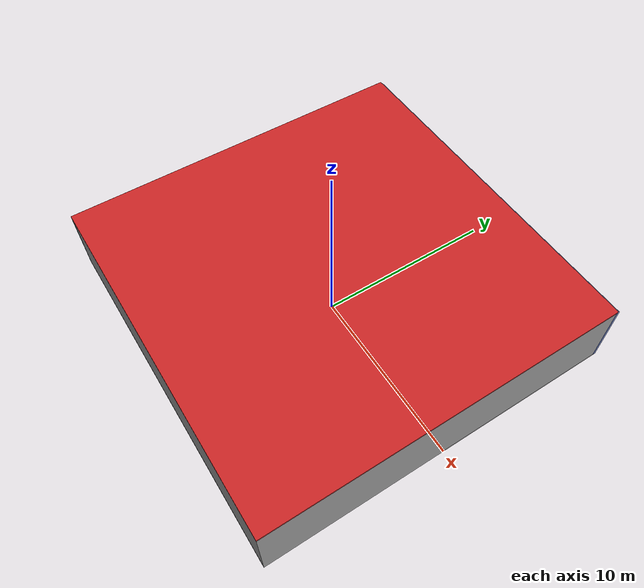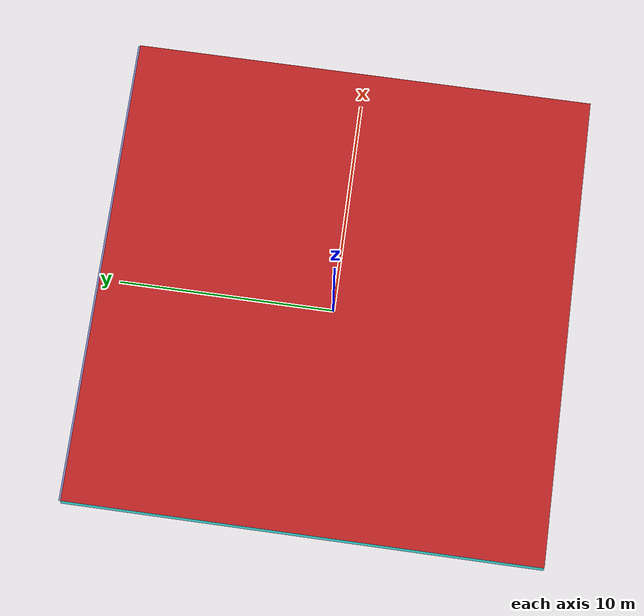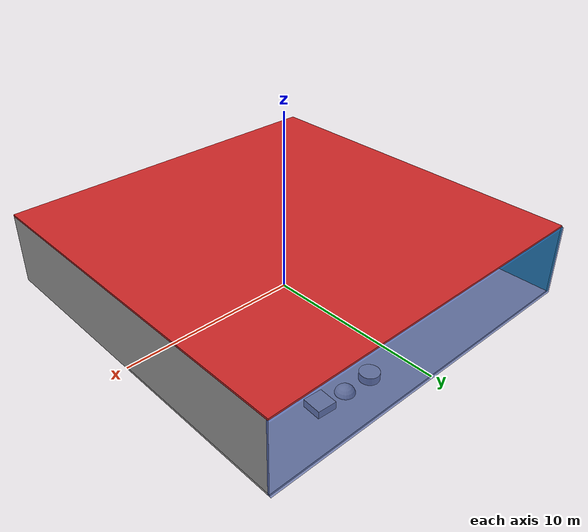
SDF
<sdf version="1.4">
 <world name="default">
  <physics type="ode">
   <max_step_size>0.001</max_step_size>
   <real_time_factor>1</real_time_factor>
   <real_time_update_rate>1000</real_time_update_rate>
   <gravity>0 0 -9.8</gravity>
  </physics>
  <scene><ambient>0.4 0.4 0.4 1</ambient><background>0.7 0.7 0.7 1</background><shadows>1</shadows></scene>
  <model name="Surrounding">
   <static>1</static>
   <link name="Ceiling">
    <collision name="Ceiling_Collision"><geometry><box><size>20 20 0.1</size></box></geometry></collision>
    <visual name="Ceiling_Visual">
     <geometry><box><size>20 20 0.1</size></box></geometry>
     <material>
      <script><uri>file://media/materials/scripts/gazebo.material</uri><name>Gazebo/RedBright</name></script>
     </material>
    </visual>
    <pose>0 0 4.05 0 0 0</pose>
   </link>
   <link name="Wall_South">
    <collision name="Wall_South_Collision">
     <geometry><box><size>20 0 4</size></box></geometry>
     <pose>0 0 2 0 -0 0</pose>
    </collision>
    <visual name="Wall_South_Visual">
     <pose>0 0 2 0 -0 0</pose>
     <geometry><box><size>20 0 4</size></box></geometry>
     <material>
      <script><uri>file://media/materials/scripts/gazebo.material</uri><name>Gazebo/Grey</name></script>
     </material>
    </visual>
    <velocity_decay><linear>0</linear><angular>0</angular></velocity_decay>
    <pose>0 -10 0 0 -0 0</pose>
   </link>
   <link name="Wall_East">
    <collision name="Wall_21_Collision">
     <geometry><box><size>20 0 4</size></box></geometry>
     <pose>0 0 2 0 -0 0</pose>
    </collision>
    <visual name="Wall_21_Visual">
     <pose>0 0 2 0 -0 0</pose>
     <geometry><box><size>20 0 4</size></box></geometry>
     <material>
      <script><uri>file://media/materials/scripts/gazebo.material</uri><name>Gazebo/GreyGradientSky</name></script>
     </material>
    </visual>
    <velocity_decay><linear>0</linear><angular>0</angular></velocity_decay>
    <pose>10 0 0 0 -0 1.5708</pose>
   </link>
   <link name="Wall_North">
    <collision name="Wall_22_Collision">
     <geometry><box><size>20 0.2 4</size></box></geometry>
     <pose>0 0 2 0 -0 0</pose>
    </collision>
    <visual name="Wall_22_Visual">
     <pose>0 0 2 0 -0 0</pose>
     <geometry><box><size>20 0.2 4</size></box></geometry>
     <material>
      <script><uri>file://media/materials/scripts/gazebo.material</uri><name>Gazebo/BlueTransparent</name></script>
     </material>
    </visual>
    <velocity_decay><linear>0</linear><angular>0</angular></velocity_decay>
    <pose>0 10 0 0 -0 0</pose>
   </link>
   <link name="Wall_West">
    <collision name="Wall_23_Collision">
     <geometry><box><size>20 0.2 4</size></box></geometry>
     <pose>0 0 2 0 -0 0</pose>
    </collision>
    <visual name="Wall_23_Visual">
     <pose>0 0 2 0 -0 0</pose>
     <geometry><box><size>20 0.2 4</size></box></geometry>
     <material>
      <script><uri>file://media/materials/scripts/gazebo.material</uri><name>Gazebo/TurquoiseGlow</name></script>
     </material>
    </visual>
    <velocity_decay><linear>0</linear><angular>0</angular></velocity_decay>
    <pose>-10 0 0 0 0 -1.5708</pose>
   </link>
   <link name="Ground_link">
    <collision name="collision">
     <pose>0 0 .05 0 -0 0</pose>
     <geometry><box><size>20 20 0.1</size></box></geometry>
    </collision>
    <visual name="visual">
     <pose>0 0 .05 0 -0 0</pose>
     <geometry><box><size>20 20 0.1</size></box></geometry>
     <material>
      <script><uri>file://media/materials/scripts/gazebo.material</uri><name>Gazebo/LightOff</name></script>
     </material>
    </visual>
   </link>
   <static>1</static>
  </model>
  <spherical_coordinates>
   <surface_model>EARTH_WGS84</surface_model>
   <latitude_deg>0</latitude_deg>
   <longitude_deg>0</longitude_deg>
   <elevation>0</elevation>
   <heading_deg>0</heading_deg>
  </spherical_coordinates>
  <light name="lightball_0" type="diffuse">
   <diffuse>0.8 0.8 0.8 1</diffuse>
   <specular>0.2 0.2 0.2 1</specular>
   <attenuation>
    <range>100</range>
    <constant>0.7</constant>
    <linear>0.01</linear>
    <quadratic>0.001</quadratic>
   </attenuation>
   <direction>-0.5 0.1 -0.9</direction>
   <pose>4.03635587836 -0.208824778153 1.24363793872 0 0 0</pose>
  </light>
  <light name="lightball_1" type="diffuse">
   <diffuse>0.8 0.8 0.8 1</diffuse>
   <specular>0.2 0.2 0.2 1</specular>
   <attenuation>
    <range>100</range>
    <constant>0.7</constant>
    <linear>0.01</linear>
    <quadratic>0.001</quadratic>
   </attenuation>
   <direction>-0.5 0.1 -0.9</direction>
   <pose>8.07053048186 -3.02864577928 1.49485561145 0 0 0</pose>
  </light>
  <light name="lightball_2" type="diffuse">
   <diffuse>0.8 0.8 0.8 1</diffuse>
   <specular>0.2 0.2 0.2 1</specular>
   <attenuation>
    <range>100</range>
    <constant>0.7</constant>
    <linear>0.01</linear>
    <quadratic>0.001</quadratic>
   </attenuation>
   <direction>-0.5 0.1 -0.9</direction>
   <pose>-9.42330016286 -0.913382245491 2.30291944107 0 0 0</pose>
  </light>
  <light name="lightball_3" type="diffuse">
   <diffuse>0.8 0.8 0.8 1</diffuse>
   <specular>0.2 0.2 0.2 1</specular>
   <attenuation>
    <range>100</range>
    <constant>0.7</constant>
    <linear>0.01</linear>
    <quadratic>0.001</quadratic>
   </attenuation>
   <direction>-0.5 0.1 -0.9</direction>
   <pose>-0.122495687945 5.36664609127 3.26111433322 0 0 0</pose>
  </light>
  <light name="lightball_4" type="diffuse">
   <diffuse>0.8 0.8 0.8 1</diffuse>
   <specular>0.2 0.2 0.2 1</specular>
   <attenuation>
    <range>100</range>
    <constant>0.7</constant>
    <linear>0.01</linear>
    <quadratic>0.001</quadratic>
   </attenuation>
   <direction>-0.5 0.1 -0.9</direction>
   <pose>8.0469557924 -0.526966374076 2.96815820758 0 0 0</pose>
  </light>
  <light name="lightball_5" type="diffuse">
   <diffuse>0.8 0.8 0.8 1</diffuse>
   <specular>0.2 0.2 0.2 1</specular>
   <attenuation>
    <range>100</range>
    <constant>0.7</constant>
    <linear>0.01</linear>
    <quadratic>0.001</quadratic>
   </attenuation>
   <direction>-0.5 0.1 -0.9</direction>
   <pose>-4.6645124553 -6.21203385563 1.96804223414 0 0 0</pose>
  </light>
  <light name="lightball_6" type="diffuse">
   <diffuse>0.8 0.8 0.8 1</diffuse>
   <specular>0.2 0.2 0.2 1</specular>
   <attenuation>
    <range>100</range>
    <constant>0.7</constant>
    <linear>0.01</linear>
    <quadratic>0.001</quadratic>
   </attenuation>
   <direction>-0.5 0.1 -0.9</direction>
   <pose>-8.06414839121 -8.81756870172 2.48289744203 0 0 0</pose>
  </light>
  <light name="lightball_7" type="diffuse">
   <diffuse>0.8 0.8 0.8 1</diffuse>
   <specular>0.2 0.2 0.2 1</specular>
   <attenuation>
    <range>100</range>
    <constant>0.7</constant>
    <linear>0.01</linear>
    <quadratic>0.001</quadratic>
   </attenuation>
   <direction>-0.5 0.1 -0.9</direction>
   <pose>4.75021480249 -0.381694717193 0.646930844384 0 0 0</pose>
  </light>
  <light name="lightball_8" type="diffuse">
   <diffuse>0.8 0.8 0.8 1</diffuse>
   <specular>0.2 0.2 0.2 1</specular>
   <attenuation>
    <range>100</range>
    <constant>0.7</constant>
    <linear>0.01</linear>
    <quadratic>0.001</quadratic>
   </attenuation>
   <direction>-0.5 0.1 -0.9</direction>
   <pose>8.96236221686 6.254265748 2.79733335098 0 0 0</pose>
  </light>
  <include><uri>model://cabinet</uri><pose>-2.5679459078 0.47763269776 0 0 0 1.87816018547</pose></include>
  <include><uri>model://cabinet</uri><pose>5.69533832779 -5.40816726506 0 0 0 0.85784124602</pose></include>
  <include>
   <uri>model://textured_shapes</uri>
   <pose>3.77615109191 8.08554622215 0 0 0 1.50352078264</pose>
  </include>
 </world>
</sdf>

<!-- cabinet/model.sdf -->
<sdf version="1.5">
  <model name="cabinet">
    <static>true</static>
    <link name="cabinet_bottom_plate">
      <inertial>
        <pose>0 0 -1 0 0 0</pose>
        <inertia>
          <ixx>2.050000</ixx>
          <ixy>0</ixy>
          <ixz>0</ixz>
          <iyy>2.050000</iyy>
          <iyz>0</iyz>
          <izz>2.050000</izz>
        </inertia>
        <mass>25.000000</mass>
      </inertial>
      <collision name="cabinet_bottom_plate_geom">
        <pose>0 0 0.010000 0 0 0</pose>
        <geometry>
          <box>
            <size>0.450000 0.450000 0.020000</size>
          </box>
        </geometry>
      </collision>
      <visual name="cabinet_bottom_plate_geom_visual">
        <pose>0 0 0.010000 0 0 0</pose>
        <geometry>
          <box>
            <size>0.450000 0.450000 0.020000</size>
          </box>
        </geometry>
        <material>
          <script>
            <uri>model://media/materials/scripts/gazebo.material</uri>
            <name>Gazebo/Wood</name>
          </script>
        </material>
      </visual>
      <collision name="cabinet_bottom_plate_geom_cabinet_back_plate">
        <pose>0.235000 0 0.510000 0 0 0</pose>
        <geometry>
          <box>
            <size>0.020000 0.450000 1.020000</size>
          </box>
        </geometry>
      </collision>
      <visual name="cabinet_bottom_plate_geom_cabinet_back_plate_visual">
        <pose>0.235000 0 0.510000 0 0 0</pose>
        <geometry>
          <box>
            <size>0.020000 0.450000 1.020000</size>
          </box>
        </geometry>
        <material>
          <script>
            <uri>model://media/materials/scripts/gazebo.material</uri>
            <name>Gazebo/Wood</name>
          </script>
        </material>
      </visual>
      <collision name="cabinet_bottom_plate_geom_cabinet_left_plate">
        <pose>0 0.235000 0.510000 0 0 0</pose>
        <geometry>
          <box>
            <size>0.450000 0.020000 1.020000</size>
          </box>
        </geometry>
      </collision>
      <visual name="cabinet_bottom_plate_geom_cabinet_left_plate_visual">
        <pose>0 0.235000 0.510000 0 0 0</pose>
        <geometry>
          <box>
            <size>0.450000 0.020000 1.020000</size>
          </box>
        </geometry>
        <material>
          <script>
            <uri>model://media/materials/scripts/gazebo.material</uri>
            <name>Gazebo/Wood</name>
          </script>
        </material>
      </visual>
      <collision name="cabinet_bottom_plate_geom_cabinet_middle_plate">
        <pose>0 0 0.510000 0 0 0</pose>
        <geometry>
          <box>
            <size>0.450000 0.450000 0.020000</size>
          </box>
        </geometry>
      </collision>
      <visual name="cabinet_bottom_plate_geom_cabinet_middle_plate_visual">
        <pose>0 0 0.510000 0 0 0</pose>
        <geometry>
          <box>
            <size>0.450000 0.450000 0.020000</size>
          </box>
        </geometry>
        <material>
          <script>
            <uri>model://media/materials/scripts/gazebo.material</uri>
            <name>Gazebo/Wood</name>
          </script>
        </material>
      </visual>
      <collision name="cabinet_bottom_plate_geom_cabinet_right_plate">
        <pose>0 -0.235000 0.510000 0 0 0</pose>
        <geometry>
          <box>
            <size>0.450000 0.020000 1.020000</size>
          </box>
        </geometry>
      </collision>
      <visual name="cabinet_bottom_plate_geom_cabinet_right_plate_visual">
        <pose>0 -0.235000 0.510000 0 0 0</pose>
        <geometry>
          <box>
            <size>0.450000 0.020000 1.020000</size>
          </box>
        </geometry>
        <material>
          <script>
            <uri>model://media/materials/scripts/gazebo.material</uri>
            <name>Gazebo/Wood</name>
          </script>
        </material>
      </visual>
      <collision name="cabinet_bottom_plate_geom_cabinet_top_plate">
        <pose>0 0 1.010000 0 0 0</pose>
        <geometry>
          <box>
            <size>0.450000 0.450000 0.020000</size>
          </box>
        </geometry>
      </collision>
      <visual name="cabinet_bottom_plate_geom_cabinet_top_plate_visual">
        <pose>0 0 1.010000 0 0 0</pose>
        <geometry>
          <box>
            <size>0.450000 0.450000 0.020000</size>
          </box>
        </geometry>
        <material>
          <script>
            <uri>model://media/materials/scripts/gazebo.material</uri>
            <name>Gazebo/Wood</name>
          </script>
        </material>
      </visual>
    </link>
  </model>
</sdf>

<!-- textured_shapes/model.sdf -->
<sdf version="1.6">
  <model name="textured_shapes">
    <pose>0 0 0.5 0 0 0</pose>
    <link name="box">
      <pose>0 -1.5 0 0 0 0</pose>
      <collision name="collision">
        <geometry>
          <box>
            <size>1 1 1</size>
          </box>
        </geometry>
      </collision>
      <visual name="visual">
        <geometry>
          <box>
            <size>1 1 1</size>
          </box>
        </geometry>
        <material>
          <script>
            <uri>model://../model_source/models/textured_shapes/materials/scripts</uri>
            <uri>model://../model_source/models/textured_shapes/materials/textures</uri>
            <name>TexturedShape/Squares</name>
          </script>
        </material>
      </visual>
    </link>
    <link name="sphere">
      <collision name="collision">
        <geometry>
          <sphere>
            <radius>0.5</radius>
          </sphere>
        </geometry>
      </collision>
      <visual name="visual">
        <geometry>
          <sphere>
            <radius>0.5</radius>
          </sphere>
        </geometry>
        <material>
          <script>
            <uri>model://../model_source/models/textured_shapes/materials/scripts</uri>
            <uri>model://../model_source/models/textured_shapes/materials/textures</uri>
            <name>TexturedShape/Squares</name>
          </script>
        </material>
      </visual>
    </link>
    <link name="cylinder">
      <pose>0 1.5 0 0 0 0</pose>
      <collision name="collision">
        <geometry>
          <cylinder>
            <radius>0.5</radius>
            <length>1</length>
          </cylinder>
        </geometry>
      </collision>
      <visual name="visual">
        <geometry>
          <cylinder>
            <radius>0.5</radius>
            <length>1</length>
          </cylinder>
        </geometry>
        <material>
          <script>
            <uri>model://../model_source/models/textured_shapes/materials/scripts</uri>
            <uri>model://../model_source/models/textured_shapes/materials/textures</uri>
            <name>TexturedShape/Squares</name>
          </script>
        </material>
      </visual>
    </link>
  </model>
</sdf>
